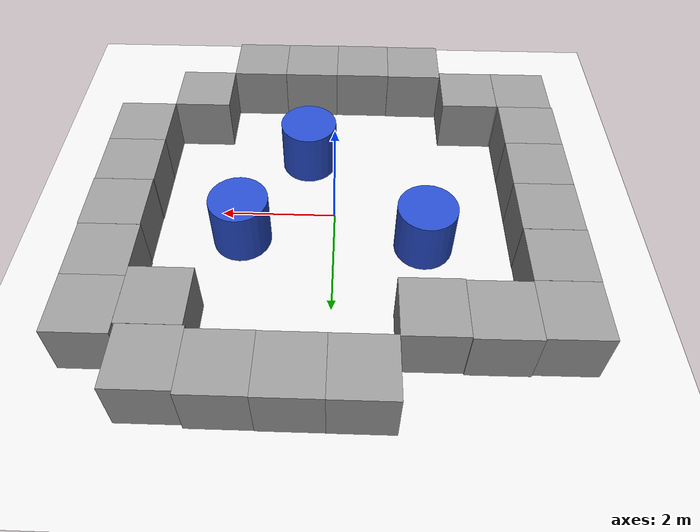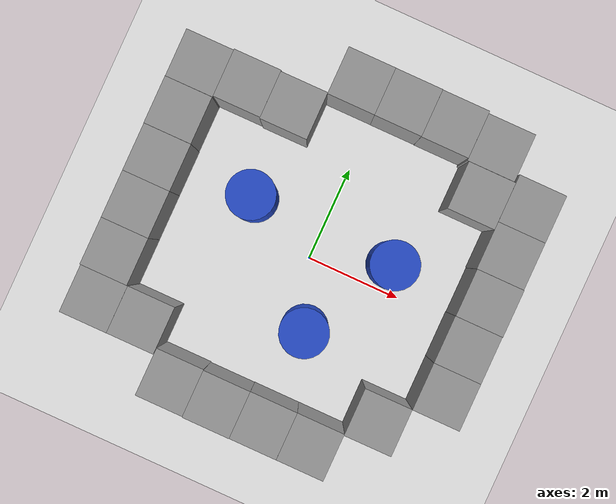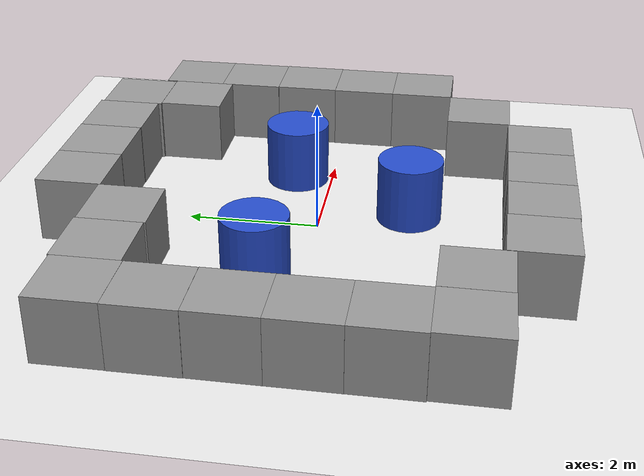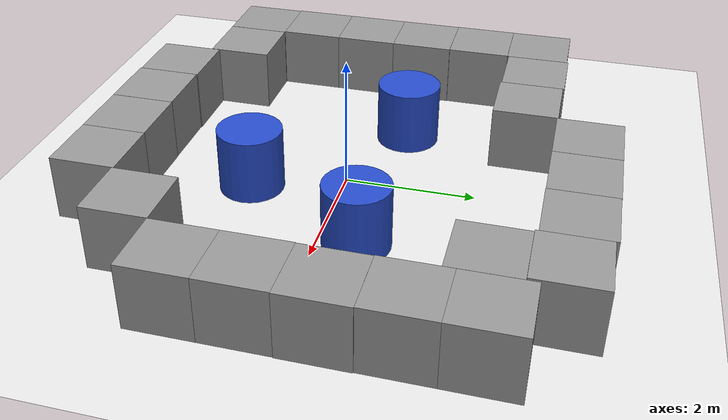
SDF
<sdf version="1.7">
 <world name="default">
  <light name="sun" type="directional">
   <pose>10 6 10 0 -0 0</pose>
   <diffuse>0.8 0.8 0.8 1</diffuse>
   <specular>0.2 0.2 0.2 1</specular>
   <attenuation>
    <range>1000</range>
    <constant>0.9</constant>
    <linear>0.01</linear>
    <quadratic>0.001</quadratic>
   </attenuation>
   <direction>-0.5 0.1 -0.9</direction>
   <spot><inner_angle>0</inner_angle><outer_angle>0</outer_angle><falloff>0</falloff></spot>
  </light>
  <model name="ground_plane">
   <static>1</static>
   <link name="link">
    <collision name="collision">
     <geometry><plane><normal>0 0 1</normal><size>100 100</size></plane></geometry>
     <surface><friction><ode><mu>100</mu><mu2>50</mu2></ode></friction></surface>
    </collision>
    <visual name="visual">
     <cast_shadows>0</cast_shadows>
     <geometry><plane><normal>0 0 1</normal><size>100 100</size></plane></geometry>
     <material>
      <script><uri>file://media/materials/scripts/gazebo.material</uri><name>Gazebo/White</name></script>
     </material>
    </visual>
   </link>
  </model>
  <gravity>0 0 -9.8</gravity>
  <magnetic_field>6e-06 2.3e-05 -4.2e-05</magnetic_field>
  <atmosphere type="adiabatic"/>
  <physics type="ode">
   <max_step_size>0.001</max_step_size>
   <real_time_factor>1</real_time_factor>
   <real_time_update_rate>1000</real_time_update_rate>
  </physics>
  <scene><ambient>0.4 0.4 0.4 1</ambient><background>0.7 0.7 0.7 1</background><shadows>1</shadows></scene>
  <audio><device>default</device></audio>
  <spherical_coordinates>
   <surface_model>EARTH_WGS84</surface_model>
   <latitude_deg>0</latitude_deg>
   <longitude_deg>0</longitude_deg>
   <elevation>0</elevation>
   <heading_deg>0</heading_deg>
  </spherical_coordinates>
  <model name="unit_box">
   <pose>-3.48862 0.553838 0.5 -1e-06 -0 0.000608</pose>
   <link name="link">
    <inertial>
     <mass>1</mass>
     <inertia>
      <ixx>0.166667</ixx>
      <ixy>0</ixy>
      <ixz>0</ixz>
      <iyy>0.166667</iyy>
      <iyz>0</iyz>
      <izz>0.166667</izz>
     </inertia>
    </inertial>
    <collision name="collision"><geometry><box><size>1 1 1</size></box></geometry></collision>
    <visual name="visual">
     <geometry><box><size>1 1 1</size></box></geometry>
     <material>
      <script><name>Gazebo/Grey</name><uri>file://media/materials/scripts/gazebo.material</uri></script>
     </material>
    </visual>
   </link>
  </model>
  <model name="unit_box_0">
   <pose>-3.48718 -0.446197 0.5 0 -0 0.000547</pose>
   <link name="link">
    <inertial>
     <mass>1</mass>
     <inertia>
      <ixx>0.166667</ixx>
      <ixy>0</ixy>
      <ixz>0</ixz>
      <iyy>0.166667</iyy>
      <iyz>0</iyz>
      <izz>0.166667</izz>
     </inertia>
    </inertial>
    <collision name="collision"><geometry><box><size>1 1 1</size></box></geometry></collision>
    <visual name="visual">
     <geometry><box><size>1 1 1</size></box></geometry>
     <material>
      <script><name>Gazebo/Grey</name><uri>file://media/materials/scripts/gazebo.material</uri></script>
     </material>
    </visual>
   </link>
  </model>
  <model name="unit_box_1">
   <pose>-3.48466 -1.44626 0.5 0 -0 0.000427</pose>
   <link name="link">
    <inertial>
     <mass>1</mass>
     <inertia>
      <ixx>0.166667</ixx>
      <ixy>0</ixy>
      <ixz>0</ixz>
      <iyy>0.166667</iyy>
      <iyz>0</iyz>
      <izz>0.166667</izz>
     </inertia>
    </inertial>
    <collision name="collision"><geometry><box><size>1 1 1</size></box></geometry></collision>
    <visual name="visual">
     <geometry><box><size>1 1 1</size></box></geometry>
     <material>
      <script><name>Gazebo/Grey</name><uri>file://media/materials/scripts/gazebo.material</uri></script>
     </material>
    </visual>
   </link>
  </model>
  <model name="unit_box_2">
   <pose>3.54025 -0.337205 0.499995 1e-05 -0 0.000444</pose>
   <link name="link">
    <inertial>
     <mass>1</mass>
     <inertia>
      <ixx>0.166667</ixx>
      <ixy>0</ixy>
      <ixz>0</ixz>
      <iyy>0.166667</iyy>
      <iyz>0</iyz>
      <izz>0.166667</izz>
     </inertia>
    </inertial>
    <collision name="collision"><geometry><box><size>1 1 1</size></box></geometry></collision>
    <visual name="visual">
     <geometry><box><size>1 1 1</size></box></geometry>
     <material>
      <script><name>Gazebo/Grey</name><uri>file://media/materials/scripts/gazebo.material</uri></script>
     </material>
    </visual>
   </link>
  </model>
  <model name="unit_box_3">
   <pose>1.54336 -3.31354 0.499995 -0 1e-05 0.000238</pose>
   <link name="link">
    <inertial>
     <mass>1</mass>
     <inertia>
      <ixx>0.166667</ixx>
      <ixy>0</ixy>
      <ixz>0</ixz>
      <iyy>0.166667</iyy>
      <iyz>0</iyz>
      <izz>0.166667</izz>
     </inertia>
    </inertial>
    <collision name="collision"><geometry><box><size>1 1 1</size></box></geometry></collision>
    <visual name="visual">
     <geometry><box><size>1 1 1</size></box></geometry>
     <material>
      <script><name>Gazebo/Grey</name><uri>file://media/materials/scripts/gazebo.material</uri></script>
     </material>
    </visual>
   </link>
  </model>
  <model name="unit_box_4">
   <pose>0.502353 3.54389 0.499995 0 -1e-05 0.001479</pose>
   <link name="link">
    <inertial>
     <mass>1</mass>
     <inertia>
      <ixx>0.166667</ixx>
      <ixy>0</ixy>
      <ixz>0</ixz>
      <iyy>0.166667</iyy>
      <iyz>0</iyz>
      <izz>0.166667</izz>
     </inertia>
    </inertial>
    <collision name="collision"><geometry><box><size>1 1 1</size></box></geometry></collision>
    <visual name="visual">
     <geometry><box><size>1 1 1</size></box></geometry>
     <material>
      <script><name>Gazebo/Grey</name><uri>file://media/materials/scripts/gazebo.material</uri></script>
     </material>
    </visual>
   </link>
  </model>
  <model name="unit_box_5">
   <pose>1.5024 3.53892 0.499995 -1e-05 0 0.001435</pose>
   <link name="link">
    <inertial>
     <mass>1</mass>
     <inertia>
      <ixx>0.166667</ixx>
      <ixy>0</ixy>
      <ixz>0</ixz>
      <iyy>0.166667</iyy>
      <iyz>0</iyz>
      <izz>0.166667</izz>
     </inertia>
    </inertial>
    <collision name="collision"><geometry><box><size>1 1 1</size></box></geometry></collision>
    <visual name="visual">
     <geometry><box><size>1 1 1</size></box></geometry>
     <material>
      <script><name>Gazebo/Grey</name><uri>file://media/materials/scripts/gazebo.material</uri></script>
     </material>
    </visual>
   </link>
  </model>
  <model name="unit_box_6">
   <pose>0.543297 -3.31507 0.499995 -1e-05 -0 0.000175</pose>
   <link name="link">
    <inertial>
     <mass>1</mass>
     <inertia>
      <ixx>0.166667</ixx>
      <ixy>0</ixy>
      <ixz>0</ixz>
      <iyy>0.166667</iyy>
      <iyz>0</iyz>
      <izz>0.166667</izz>
     </inertia>
    </inertial>
    <collision name="collision"><geometry><box><size>1 1 1</size></box></geometry></collision>
    <visual name="visual">
     <geometry><box><size>1 1 1</size></box></geometry>
     <material>
      <script><name>Gazebo/Grey</name><uri>file://media/materials/scripts/gazebo.material</uri></script>
     </material>
    </visual>
   </link>
  </model>
  <model name="unit_box_7">
   <pose>3.54109 -1.33724 0.499995 0 -1e-05 0.000477</pose>
   <link name="link">
    <inertial>
     <mass>1</mass>
     <inertia>
      <ixx>0.166667</ixx>
      <ixy>0</ixy>
      <ixz>0</ixz>
      <iyy>0.166667</iyy>
      <iyz>0</iyz>
      <izz>0.166667</izz>
     </inertia>
    </inertial>
    <collision name="collision"><geometry><box><size>1 1 1</size></box></geometry></collision>
    <visual name="visual">
     <geometry><box><size>1 1 1</size></box></geometry>
     <material>
      <script><name>Gazebo/Grey</name><uri>file://media/materials/scripts/gazebo.material</uri></script>
     </material>
    </visual>
   </link>
  </model>
  <model name="unit_box_8">
   <pose>2.54149 -2.33558 0.499995 1e-05 -0 0.003988</pose>
   <link name="link">
    <inertial>
     <mass>1</mass>
     <inertia>
      <ixx>0.166667</ixx>
      <ixy>0</ixy>
      <ixz>0</ixz>
      <iyy>0.166667</iyy>
      <iyz>0</iyz>
      <izz>0.166667</izz>
     </inertia>
    </inertial>
    <collision name="collision"><geometry><box><size>1 1 1</size></box></geometry></collision>
    <visual name="visual">
     <geometry><box><size>1 1 1</size></box></geometry>
     <material>
      <script><name>Gazebo/Grey</name><uri>file://media/materials/scripts/gazebo.material</uri></script>
     </material>
    </visual>
   </link>
  </model>
  <model name="unit_box_9">
   <pose>2.53768 2.49005 0.499995 -1e-05 -0 -0.000473</pose>
   <link name="link">
    <inertial>
     <mass>1</mass>
     <inertia>
      <ixx>0.166667</ixx>
      <ixy>0</ixy>
      <ixz>0</ixz>
      <iyy>0.166667</iyy>
      <iyz>0</iyz>
      <izz>0.166667</izz>
     </inertia>
    </inertial>
    <collision name="collision"><geometry><box><size>1 1 1</size></box></geometry></collision>
    <visual name="visual">
     <geometry><box><size>1 1 1</size></box></geometry>
     <material>
      <script><name>Gazebo/Grey</name><uri>file://media/materials/scripts/gazebo.material</uri></script>
     </material>
    </visual>
   </link>
  </model>
  <model name="unit_box_10">
   <pose>3.53742 1.66323 0.499995 0 -1e-05 -0.000228</pose>
   <link name="link">
    <inertial>
     <mass>1</mass>
     <inertia>
      <ixx>0.166667</ixx>
      <ixy>0</ixy>
      <ixz>0</ixz>
      <iyy>0.166667</iyy>
      <iyz>0</iyz>
      <izz>0.166667</izz>
     </inertia>
    </inertial>
    <collision name="collision"><geometry><box><size>1 1 1</size></box></geometry></collision>
    <visual name="visual">
     <geometry><box><size>1 1 1</size></box></geometry>
     <material>
      <script><name>Gazebo/Grey</name><uri>file://media/materials/scripts/gazebo.material</uri></script>
     </material>
    </visual>
   </link>
  </model>
  <model name="unit_box_11">
   <pose>3.54804 0.662948 0.499995 -0 1e-05 0.000184</pose>
   <link name="link">
    <inertial>
     <mass>1</mass>
     <inertia>
      <ixx>0.166667</ixx>
      <ixy>0</ixy>
      <ixz>0</ixz>
      <iyy>0.166667</iyy>
      <iyz>0</iyz>
      <izz>0.166667</izz>
     </inertia>
    </inertial>
    <collision name="collision"><geometry><box><size>1 1 1</size></box></geometry></collision>
    <visual name="visual">
     <geometry><box><size>1 1 1</size></box></geometry>
     <material>
      <script><name>Gazebo/Grey</name><uri>file://media/materials/scripts/gazebo.material</uri></script>
     </material>
    </visual>
   </link>
  </model>
  <model name="unit_box_12">
   <pose>-0.497724 3.5446 0.499995 1e-05 0 0.001597</pose>
   <link name="link">
    <inertial>
     <mass>1</mass>
     <inertia>
      <ixx>0.166667</ixx>
      <ixy>0</ixy>
      <ixz>0</ixz>
      <iyy>0.166667</iyy>
      <iyz>0</iyz>
      <izz>0.166667</izz>
     </inertia>
    </inertial>
    <collision name="collision"><geometry><box><size>1 1 1</size></box></geometry></collision>
    <visual name="visual">
     <geometry><box><size>1 1 1</size></box></geometry>
     <material>
      <script><name>Gazebo/Grey</name><uri>file://media/materials/scripts/gazebo.material</uri></script>
     </material>
    </visual>
   </link>
  </model>
  <model name="unit_box_13">
   <pose>-1.49498 2.5633 0.499995 1e-05 -0 0.004105</pose>
   <link name="link">
    <inertial>
     <mass>1</mass>
     <inertia>
      <ixx>0.166667</ixx>
      <ixy>0</ixy>
      <ixz>0</ixz>
      <iyy>0.166667</iyy>
      <iyz>0</iyz>
      <izz>0.166667</izz>
     </inertia>
    </inertial>
    <collision name="collision"><geometry><box><size>1 1 1</size></box></geometry></collision>
    <visual name="visual">
     <geometry><box><size>1 1 1</size></box></geometry>
     <material>
      <script><name>Gazebo/Grey</name><uri>file://media/materials/scripts/gazebo.material</uri></script>
     </material>
    </visual>
   </link>
  </model>
  <model name="unit_box_14">
   <pose>-2.49515 2.58186 0.5 0 -0 0.003935</pose>
   <link name="link">
    <inertial>
     <mass>1</mass>
     <inertia>
      <ixx>0.166667</ixx>
      <ixy>0</ixy>
      <ixz>0</ixz>
      <iyy>0.166667</iyy>
      <iyz>0</iyz>
      <izz>0.166667</izz>
     </inertia>
    </inertial>
    <collision name="collision"><geometry><box><size>1 1 1</size></box></geometry></collision>
    <visual name="visual">
     <geometry><box><size>1 1 1</size></box></geometry>
     <material>
      <script><name>Gazebo/Grey</name><uri>file://media/materials/scripts/gazebo.material</uri></script>
     </material>
    </visual>
   </link>
  </model>
  <model name="unit_box_15">
   <pose>-3.49572 1.55459 0.5 0 -0 0.002144</pose>
   <link name="link">
    <inertial>
     <mass>1</mass>
     <inertia>
      <ixx>0.166667</ixx>
      <ixy>0</ixy>
      <ixz>0</ixz>
      <iyy>0.166667</iyy>
      <iyz>0</iyz>
      <izz>0.166667</izz>
     </inertia>
    </inertial>
    <collision name="collision"><geometry><box><size>1 1 1</size></box></geometry></collision>
    <visual name="visual">
     <geometry><box><size>1 1 1</size></box></geometry>
     <material>
      <script><name>Gazebo/Grey</name><uri>file://media/materials/scripts/gazebo.material</uri></script>
     </material>
    </visual>
   </link>
  </model>
  <model name="unit_box_16">
   <pose>-1.45677 -3.30641 0.499995 0 1e-05 0.000163</pose>
   <link name="link">
    <inertial>
     <mass>1</mass>
     <inertia>
      <ixx>0.166667</ixx>
      <ixy>0</ixy>
      <ixz>0</ixz>
      <iyy>0.166667</iyy>
      <iyz>0</iyz>
      <izz>0.166667</izz>
     </inertia>
    </inertial>
    <collision name="collision"><geometry><box><size>1 1 1</size></box></geometry></collision>
    <visual name="visual">
     <geometry><box><size>1 1 1</size></box></geometry>
     <material>
      <script><name>Gazebo/Grey</name><uri>file://media/materials/scripts/gazebo.material</uri></script>
     </material>
    </visual>
   </link>
  </model>
  <model name="unit_box_17">
   <pose>-0.456766 -3.31974 0.499995 0 1e-05 0.000161</pose>
   <link name="link">
    <inertial>
     <mass>1</mass>
     <inertia>
      <ixx>0.166667</ixx>
      <ixy>0</ixy>
      <ixz>0</ixz>
      <iyy>0.166667</iyy>
      <iyz>0</iyz>
      <izz>0.166667</izz>
     </inertia>
    </inertial>
    <collision name="collision"><geometry><box><size>1 1 1</size></box></geometry></collision>
    <visual name="visual">
     <geometry><box><size>1 1 1</size></box></geometry>
     <material>
      <script><name>Gazebo/Grey</name><uri>file://media/materials/scripts/gazebo.material</uri></script>
     </material>
    </visual>
   </link>
  </model>
  <model name="unit_box_18">
   <pose>-3.46463 -2.44625 0.499995 0 -1e-05 0.000421</pose>
   <link name="link">
    <inertial>
     <mass>1</mass>
     <inertia>
      <ixx>0.166667</ixx>
      <ixy>0</ixy>
      <ixz>0</ixz>
      <iyy>0.166667</iyy>
      <iyz>0</iyz>
      <izz>0.166667</izz>
     </inertia>
    </inertial>
    <collision name="collision"><geometry><box><size>1 1 1</size></box></geometry></collision>
    <visual name="visual">
     <geometry><box><size>1 1 1</size></box></geometry>
     <material>
      <script><name>Gazebo/Grey</name><uri>file://media/materials/scripts/gazebo.material</uri></script>
     </material>
    </visual>
   </link>
  </model>
  <model name="unit_box_19">
   <pose>-2.46444 -2.44411 0.499995 1e-05 -0 8.3e-05</pose>
   <link name="link">
    <inertial>
     <mass>1</mass>
     <inertia>
      <ixx>0.166667</ixx>
      <ixy>0</ixy>
      <ixz>0</ixz>
      <iyy>0.166667</iyy>
      <iyz>0</iyz>
      <izz>0.166667</izz>
     </inertia>
    </inertial>
    <collision name="collision"><geometry><box><size>1 1 1</size></box></geometry></collision>
    <visual name="visual">
     <geometry><box><size>1 1 1</size></box></geometry>
     <material>
      <script><name>Gazebo/Grey</name><uri>file://media/materials/scripts/gazebo.material</uri></script>
     </material>
    </visual>
   </link>
  </model>
  <model name="unit_box_20">
   <pose>-3.4951 2.55547 0.499995 -0 -1e-05 0.003883</pose>
   <link name="link">
    <inertial>
     <mass>1</mass>
     <inertia>
      <ixx>0.166667</ixx>
      <ixy>0</ixy>
      <ixz>0</ixz>
      <iyy>0.166667</iyy>
      <iyz>0</iyz>
      <izz>0.166667</izz>
     </inertia>
    </inertial>
    <collision name="collision"><geometry><box><size>1 1 1</size></box></geometry></collision>
    <visual name="visual">
     <geometry><box><size>1 1 1</size></box></geometry>
     <material>
      <script><name>Gazebo/Grey</name><uri>file://media/materials/scripts/gazebo.material</uri></script>
     </material>
    </visual>
   </link>
  </model>
  <model name="unit_cylinder">
   <pose>-1.53198 0.648307 0.499998 3e-06 -3e-06 0</pose>
   <link name="link">
    <inertial>
     <mass>1</mass>
     <inertia><ixx>0.145833</ixx><ixy>0</ixy><ixz>0</ixz><iyy>0.145833</iyy><iyz>0</iyz><izz>0.125</izz></inertia>
    </inertial>
    <collision name="collision">
     <geometry><cylinder><radius>0.5</radius><length>1</length></cylinder></geometry>
    </collision>
    <visual name="visual">
     <geometry><cylinder><radius>0.5</radius><length>1</length></cylinder></geometry>
     <material>
      <script><name>Gazebo/Blue</name><uri>file://media/materials/scripts/gazebo.material</uri></script>
     </material>
    </visual>
   </link>
  </model>
  <model name="unit_cylinder_0">
   <pose>0.518435 -1.36049 0.499993 -3e-06 3e-06 0</pose>
   <link name="link">
    <inertial>
     <mass>1</mass>
     <inertia><ixx>0.145833</ixx><ixy>0</ixy><ixz>0</ixz><iyy>0.145833</iyy><iyz>0</iyz><izz>0.125</izz></inertia>
    </inertial>
    <collision name="collision">
     <geometry><cylinder><radius>0.5</radius><length>1</length></cylinder></geometry>
    </collision>
    <visual name="visual">
     <geometry><cylinder><radius>0.5</radius><length>1</length></cylinder></geometry>
     <material>
      <script><name>Gazebo/Blue</name><uri>file://media/materials/scripts/gazebo.material</uri></script>
     </material>
    </visual>
   </link>
  </model>
  <model name="unit_cylinder_1">
   <pose>1.57726 0.565893 0.499998 3e-06 -3e-06 0</pose>
   <link name="link">
    <inertial>
     <mass>1</mass>
     <inertia><ixx>0.145833</ixx><ixy>0</ixy><ixz>0</ixz><iyy>0.145833</iyy><iyz>0</iyz><izz>0.125</izz></inertia>
    </inertial>
    <collision name="collision">
     <geometry><cylinder><radius>0.5</radius><length>1</length></cylinder></geometry>
    </collision>
    <visual name="visual">
     <geometry><cylinder><radius>0.5</radius><length>1</length></cylinder></geometry>
     <material>
      <script><name>Gazebo/Blue</name><uri>file://media/materials/scripts/gazebo.material</uri></script>
     </material>
    </visual>
   </link>
  </model>
  <model name="unit_box_21">
   <pose>3.53797 2.66323 0.499995 0 -1e-05 -0.000231</pose>
   <link name="link">
    <inertial>
     <mass>1</mass>
     <inertia>
      <ixx>0.166667</ixx>
      <ixy>0</ixy>
      <ixz>0</ixz>
      <iyy>0.166667</iyy>
      <iyz>0</iyz>
      <izz>0.166667</izz>
     </inertia>
    </inertial>
    <collision name="collision"><geometry><box><size>1 1 1</size></box></geometry></collision>
    <visual name="visual">
     <geometry><box><size>1 1 1</size></box></geometry>
     <material>
      <script><name>Gazebo/Grey</name><uri>file://media/materials/scripts/gazebo.material</uri></script>
     </material>
    </visual>
   </link>
  </model>
  <model name="unit_box_22">
   <pose>2.50255 3.49144 0.5 0 -0 0.001372</pose>
   <link name="link">
    <inertial>
     <mass>1</mass>
     <inertia>
      <ixx>0.166667</ixx>
      <ixy>0</ixy>
      <ixz>0</ixz>
      <iyy>0.166667</iyy>
      <iyz>0</iyz>
      <izz>0.166667</izz>
     </inertia>
    </inertial>
    <collision name="collision"><geometry><box><size>1 1 1</size></box></geometry></collision>
    <visual name="visual">
     <geometry><box><size>1 1 1</size></box></geometry>
     <material>
      <script><name>Gazebo/Grey</name><uri>file://media/materials/scripts/gazebo.material</uri></script>
     </material>
    </visual>
   </link>
  </model>
 </world>
</sdf>
